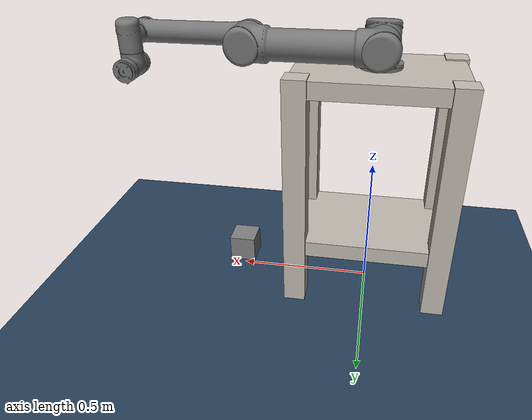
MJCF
<mujoco model="test_scene">
  <compiler angle="radian" meshdir="mesh/visual/" texturedir="textures/" inertiafromgeom="true"/>
  <option gravity="0 0 -9.81"/>
  <include file="UR5_empty.xml"/>
  <worldbody>
    <light name="scene_light" pos="0 0 3"/>
    <geom name="scene_floor" type="plane" size="5 5 0.1" rgba="0.9 0.9 0.9 1"/>
    <body name="klocek" pos="0.5 0 0.1">
      <freejoint/>
      <geom type="box" size="0.05 0.05 0.05" mass="1.0"/>
    </body>
  </worldbody>
</mujoco>

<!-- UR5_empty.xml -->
<!--Link  MuJoCo modeling: http://www.mujoco.org/book/modeling.html-->

<mujoco model="ur5gripper">
    <compiler angle="radian"
              inertiafromgeom="true"
              texturedir="textures/"
              meshdir="mesh/visual/"/>
    <option timestep="2e-3"
            iterations="100"
            tolerance="1e-10"
            impratio="10"
            gravity="0 0 0"/>

    <default>
        <site rgba="0.8 0.6 0.7 0.3" type="ellipsoid" group="3"/>
        <geom contype='1' conaffinity='1' condim='4' friction="1 0.5 0.5"  margin="1e-3" solref=".01 1" solimp=".99 .99 .01" />
        <joint armature="0.01" damping=".1"/>
        <default class="UR5">
            <joint damping='65'/>
        </default>
        <default class="UR5e">
            <joint damping='45'/>
        </default>
        <default class="GRIPPER">
            <joint damping='5'/>
        </default>
    </default>

    <visual>
        <map fogstart="3" fogend="5" znear="0.05"/>
        <quality shadowsize="2048"/>
        <scale framelength="0.1"
               framewidth="0.005"
               contactwidth="0.1"
               contactheight="0.005"
               forcewidth="0.01"
               />
    </visual>

    <!--Assets-->
    <asset>
        <!--Meshes-->
        <mesh name="base"           file="base.stl"     />
        <mesh name="shoulder"       file="shoulder.stl" />
        <mesh name="upperarm"       file="upperarm.stl" />
        <mesh name="forearm"        file="forearm.stl"  />
        <mesh name="wrist1"         file="wrist1.stl"   />
        <mesh name="wrist2"         file="wrist2.stl"   />
        <mesh name="wrist3"         file="wrist3.stl"   />
        <mesh name="gripperpalm"    file="palm.STL"     />
        <mesh name="link_0"         file="link_0.STL"   />
        <mesh name="link_1"         file="link_1.STL"   />
        <mesh name="link_2"         file="link_2.STL"   />
        <mesh name="link_3"         file="link_3.STL"   />

        <mesh name="robotiq_85_base_link_coarse" file="robotiq_85_base_link_coarse.STL" />
        <mesh name="inner_knuckle_coarse" file="inner_knuckle_coarse.STL" />
        <mesh name="inner_finger_coarse" file="inner_finger_coarse.STL" />
        <mesh name="outer_knuckle_coarse" file="outer_knuckle_coarse.STL" />
        <mesh name="outer_finger_coarse" file="outer_finger_coarse.STL" />

        <!--Textures-->
        <texture name="ur5_tex"     type="2d"       builtin="flat" height="32" width="32" rgb1="0.45 0.45 0.45" />
        <texture name="gripper_tex" type="2d"       builtin="flat" height="32" width="32" rgb1="0.45 0.45 0.45" rgb2="0 0 0"/>
        <texture name="bench_tex"   type="2d"       builtin="flat" height="32" width="32" rgb1="0.7 0.7 0.7" />
        <texture name="sky_tex"     type="skybox"   builtin="gradient" width="100" height="100" rgb1="1 1 1" rgb2="0.3 0.3 0.8" />
        <texture name="texgeom"     type="cube"     builtin="flat" mark="cross" width="127" height="1278" rgb1="0.8 0.6 0.4" rgb2="0.8 0.6 0.4" markrgb="1 1 1" random="0.01" />
        <texture name="floor_tex"   type="2d"        builtin="checker" rgb1=".2 .3 .4" rgb2=".1 .2 .3" width="100" height="100" />
        <texture name="wood"        type="cube"     file="wood2.png"/>
        <texture name="metal"        type="cube"     file="metal2.png"/>
        <!--Materials-->
        <material name="ur5_mat"        texture="ur5_tex"   shininess="0.9" specular="0.75" reflectance="0.3"/>
        <material name="gripper_mat"    texture="gripper_tex"   shininess="0.9" specular="0.75" reflectance="0.4"/>
        <material name='floor_mat'      texture="floor_tex"  shininess="0.8" texrepeat="10 10" specular="0.7"  reflectance="0.5" />
        <material name='geom'           texture="texgeom"   texuniform="true" />
        <material name="bench_mat"      texture="metal"   shininess="0.1" specular="0.5" reflectance="0.2"/>
        <material name="tablecube"      texture="wood" rgba=".8 .8 .8 1"/>
    </asset>

    <!--Contacts-->
    <contact>
        <exclude body1="box_link" body2="base_link"/>
        <exclude body1="base_link" body2="shoulder_link"/>
        <exclude body1="shoulder_link" body2="upper_arm_link"/>
        <exclude body1="upper_arm_link" body2="forearm_link"/>
        <exclude body1="forearm_link" body2="wrist_1_link"/>
        <exclude body1="wrist_1_link" body2="wrist_2_link"/>
        <exclude body1="wrist_2_link" body2="wrist_3_link"/>
    </contact>

    <!--MODEL DESCRIPTION-->
    <worldbody>
        <!--Lighting parameters-->
        <light name="light3" mode="targetbody" target="box_link" directional="true" pos="1 -1 3" />
        <!--Camera parameters-->
        <!--Floor Property-->
        <geom name='floor' material="floor_mat" pos='0 0 0' size='2.5 2.5 0.1'  type='plane' />

        <!--Robot UR5-->
        <body name="box_link" pos="0 0 0.435">
            <geom size=".29 .19 .03" pos ="0 0 0.4" type="box" material="bench_mat"/>
            <geom size=".29 .19 .03" pos ="0 0 -0.2" type="box" material="bench_mat"/>
            <geom size=".04 .04 .435" pos =".26 .16 0" type="box" material="bench_mat"/>
            <geom size=".04 .04 .435" pos ="-.26 .16 0" type="box" material="bench_mat"/>
            <geom size=".04 .04 .435" pos =".26 -.16 0" type="box" material="bench_mat"/>
            <geom size=".04 .04 .435" pos ="-.26 -.16 0" type="box" material="bench_mat"/>
            <inertial pos="0 0 0" mass="1000" diaginertia="0 0 0" />
            <body name="base_link" pos="0 0 0.435">
                <inertial pos="0 0 0" quat="0.5 0.5 -0.5 0.5" mass="4" diaginertia="0.0072 0.00443333 0.00443333" />
                <geom type="mesh"  mesh="base" material="ur5_mat"/>
                <body name="shoulder_link" pos="0 0 0.089159">
                    <inertial pos="0 0 0" mass="3.7" diaginertia="0.0102675 0.0102675 0.00666" />
                    <joint name="shoulder_pan_joint" class="UR5" pos="0 0 0" axis="0 0 1" limited="true" range="-3.14159 3.14159" />
                    <geom type="mesh"  mesh="shoulder" material="ur5_mat"/>
                    <body name="upper_arm_link" pos="0 0.13585 0" quat="0.707107 0 0.707107 0">
                        <inertial pos="0 0 0.28" mass="8.393" diaginertia="0.226891 0.226891 0.0151074" />
                        <joint name="shoulder_lift_joint" class="UR5" pos="0 0 0" axis="0 1 0" limited="true" range="-3.14159 0" /> <!--Range= -3.14159 3.14159-->
                        <geom type="mesh"  mesh="upperarm" material="ur5_mat"/>
                        <body name="forearm_link" pos="0 -0.1197 0.425">
                            <inertial pos="0 0 0.25" mass="2.275" diaginertia="0.0494433 0.0494433 0.004095" />
                            <joint name="elbow_joint" class="UR5" pos="0 0 0" axis="0 1 0" limited="true" range="-3.14159 3.14159" />
                            <geom type="mesh"  mesh="forearm" material="ur5_mat"/>
                            <body name="wrist_1_link" pos="0 0 0.39225" quat="0.707107 0 0.707107 0">
                                <inertial pos="0 0 0" quat="0.5 0.5 -0.5 0.5" mass="1.219" diaginertia="0.21942 0.111173 0.111173" />
                                <joint name="wrist_1_joint" class="UR5e" pos="0 0 0" axis="0 1 0" limited="true" range="-3.14159 3.14159" />
                                <geom type="mesh"  mesh="wrist1" material="ur5_mat"/>
                                <body name="wrist_2_link" pos="0 0.093 0">
                                    <inertial pos="0 0 0" quat="0.5 0.5 -0.5 0.5" mass="1.219" diaginertia="0.21942 0.111173 0.111173" />
                                    <joint name="wrist_2_joint" class="UR5e" pos="0 0 0" axis="0 0 1" limited="true" range="-3.14159 3.14159" />
                                    <geom type="mesh"  mesh="wrist2" material="ur5_mat"/>
                                    <body name="wrist_3_link" pos="0 0 0.09465">
                                        <inertial pos="0 0 0" quat="0.5 0.5 -0.5 0.5" mass="0.1879" diaginertia="0.033822 0.0171365 0.0171365" />
                                        <joint name="wrist_3_joint" class="UR5e" pos="0 0 0" axis="0 1 0" limited="true" range="-3.14159 3.14159" />
                                        <geom type="mesh"  mesh="wrist3" material="ur5_mat"/>
                                    </body>
                                </body>
                            </body>
                        </body>
                    </body>
                </body>
            </body>
        </body>
        <body name="base" pos="0 0 0" quat="1.7949e-09 0 0 -1">
                    <inertial pos="0 0 0" quat="1.7949e-09 0 0 -1" mass="0" diaginertia="0 0 0" />
        </body>

    </worldbody>

    <!--ACTUATORS-->
    <actuator>

        <motor name='shoulder_pan_T' ctrllimited="true" ctrlrange="-2 2" joint='shoulder_pan_joint' gear="101"/> <!--range -150 150-->
        <motor name='shoulder_lift_T' ctrllimited="true" ctrlrange="-2 2" joint='shoulder_lift_joint' gear="101"/>
        <motor name='forearm_T' ctrllimited="true" ctrlrange="-2 2" joint='elbow_joint' gear="101" />
        <motor name='wrist_1_T' ctrllimited="true" ctrlrange="-1 1" joint='wrist_1_joint' gear="101"/>  <!--range -28 28-->
        <motor name='wrist_2_T' ctrllimited="true" ctrlrange="-1 1" joint='wrist_2_joint' gear="101"/>
        <motor name='wrist_3_T' ctrllimited="true" ctrlrange="-1 1" joint='wrist_3_joint' gear="101"/>

    </actuator>

</mujoco>
